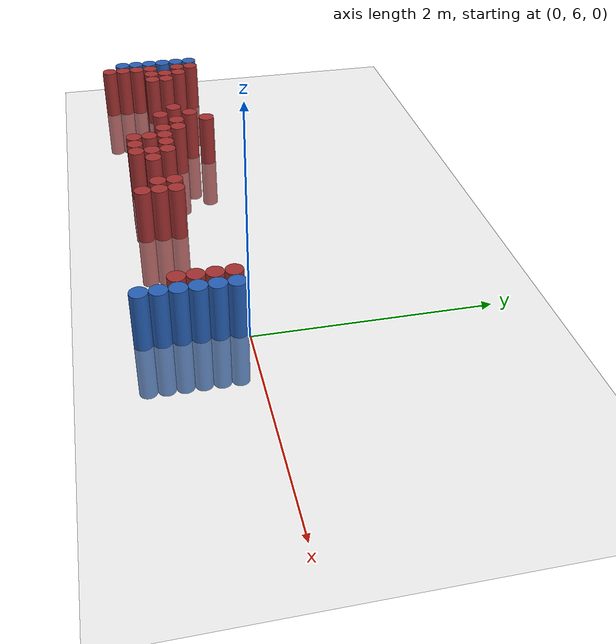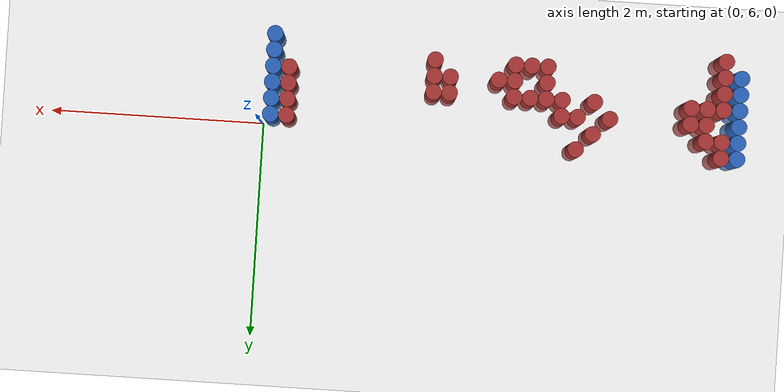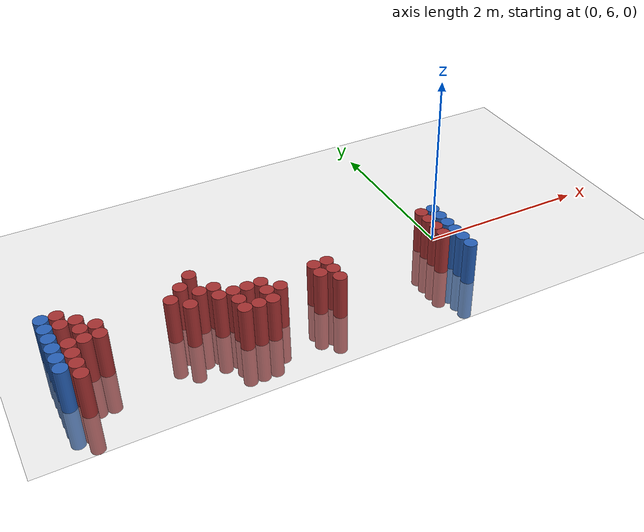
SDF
<sdf version="1.6">
 <world name="default">
  <model name="ground_plane">
   <static>1</static>
   <link name="link">
    <collision name="collision">
     <geometry><plane><normal>0 0 1</normal><size>100 100</size></plane></geometry>
     <surface><friction><ode><mu>100</mu><mu2>50</mu2></ode></friction></surface>
    </collision>
    <visual name="visual">
     <cast_shadows>0</cast_shadows>
     <geometry><plane><normal>0 0 1</normal><size>100 100</size></plane></geometry>
     <material>
      <script><uri>file://media/materials/scripts/gazebo.material</uri><name>Gazebo/Grey</name></script>
     </material>
    </visual>
   </link>
  </model>
  <model name="unit_cylinder_97">
   <static>1</static>
   <pose>-4.425000 5.325000 0.000000 0.000000 0.000000 0.000000</pose>
   <link name="link">
    <inertial>
     <mass>1</mass>
     <inertia><ixx>0.145833</ixx><ixy>0</ixy><ixz>0</ixz><iyy>0.145833</iyy><iyz>0</iyz><izz>0.125</izz></inertia>
    </inertial>
    <collision name="collision">
     <geometry><cylinder><radius>0.075000</radius><length>1</length></cylinder></geometry>
    </collision>
    <visual name="visual">
     <geometry><cylinder><radius>0.075000</radius><length>1</length></cylinder></geometry>
     <material>
      <ambient>0.152000 0.379000 0.720000 1</ambient>
      <diffuse>0.152000 0.379000 0.720000 1</diffuse>
     </material>
     <material>
      <script><name>Gazebo/Grey</name><uri>file://media/materials/scripts/gazebo.material</uri></script>
     </material>
    </visual>
   </link>
  </model>
  <model name="unit_cylinder_98">
   <static>1</static>
   <pose>-4.425000 5.475000 0.000000 0.000000 0.000000 0.000000</pose>
   <link name="link">
    <inertial>
     <mass>1</mass>
     <inertia><ixx>0.145833</ixx><ixy>0</ixy><ixz>0</ixz><iyy>0.145833</iyy><iyz>0</iyz><izz>0.125</izz></inertia>
    </inertial>
    <collision name="collision">
     <geometry><cylinder><radius>0.075000</radius><length>1</length></cylinder></geometry>
    </collision>
    <visual name="visual">
     <geometry><cylinder><radius>0.075000</radius><length>1</length></cylinder></geometry>
     <material>
      <ambient>0.152000 0.379000 0.720000 1</ambient>
      <diffuse>0.152000 0.379000 0.720000 1</diffuse>
     </material>
     <material>
      <script><name>Gazebo/Grey</name><uri>file://media/materials/scripts/gazebo.material</uri></script>
     </material>
    </visual>
   </link>
  </model>
  <model name="unit_cylinder_99">
   <static>1</static>
   <pose>-4.425000 5.625000 0.000000 0.000000 0.000000 0.000000</pose>
   <link name="link">
    <inertial>
     <mass>1</mass>
     <inertia><ixx>0.145833</ixx><ixy>0</ixy><ixz>0</ixz><iyy>0.145833</iyy><iyz>0</iyz><izz>0.125</izz></inertia>
    </inertial>
    <collision name="collision">
     <geometry><cylinder><radius>0.075000</radius><length>1</length></cylinder></geometry>
    </collision>
    <visual name="visual">
     <geometry><cylinder><radius>0.075000</radius><length>1</length></cylinder></geometry>
     <material>
      <ambient>0.152000 0.379000 0.720000 1</ambient>
      <diffuse>0.152000 0.379000 0.720000 1</diffuse>
     </material>
     <material>
      <script><name>Gazebo/Grey</name><uri>file://media/materials/scripts/gazebo.material</uri></script>
     </material>
    </visual>
   </link>
  </model>
  <model name="unit_cylinder_100">
   <static>1</static>
   <pose>-4.425000 5.775000 0.000000 0.000000 0.000000 0.000000</pose>
   <link name="link">
    <inertial>
     <mass>1</mass>
     <inertia><ixx>0.145833</ixx><ixy>0</ixy><ixz>0</ixz><iyy>0.145833</iyy><iyz>0</iyz><izz>0.125</izz></inertia>
    </inertial>
    <collision name="collision">
     <geometry><cylinder><radius>0.075000</radius><length>1</length></cylinder></geometry>
    </collision>
    <visual name="visual">
     <geometry><cylinder><radius>0.075000</radius><length>1</length></cylinder></geometry>
     <material>
      <ambient>0.152000 0.379000 0.720000 1</ambient>
      <diffuse>0.152000 0.379000 0.720000 1</diffuse>
     </material>
     <material>
      <script><name>Gazebo/Grey</name><uri>file://media/materials/scripts/gazebo.material</uri></script>
     </material>
    </visual>
   </link>
  </model>
  <model name="unit_cylinder_101">
   <static>1</static>
   <pose>-4.425000 5.925000 0.000000 0.000000 0.000000 0.000000</pose>
   <link name="link">
    <inertial>
     <mass>1</mass>
     <inertia><ixx>0.145833</ixx><ixy>0</ixy><ixz>0</ixz><iyy>0.145833</iyy><iyz>0</iyz><izz>0.125</izz></inertia>
    </inertial>
    <collision name="collision">
     <geometry><cylinder><radius>0.075000</radius><length>1</length></cylinder></geometry>
    </collision>
    <visual name="visual">
     <geometry><cylinder><radius>0.075000</radius><length>1</length></cylinder></geometry>
     <material>
      <ambient>0.152000 0.379000 0.720000 1</ambient>
      <diffuse>0.152000 0.379000 0.720000 1</diffuse>
     </material>
     <material>
      <script><name>Gazebo/Grey</name><uri>file://media/materials/scripts/gazebo.material</uri></script>
     </material>
    </visual>
   </link>
  </model>
  <model name="unit_cylinder_102">
   <static>1</static>
   <pose>-4.425000 6.075000 0.000000 0.000000 0.000000 0.000000</pose>
   <link name="link">
    <inertial>
     <mass>1</mass>
     <inertia><ixx>0.145833</ixx><ixy>0</ixy><ixz>0</ixz><iyy>0.145833</iyy><iyz>0</iyz><izz>0.125</izz></inertia>
    </inertial>
    <collision name="collision">
     <geometry><cylinder><radius>0.075000</radius><length>1</length></cylinder></geometry>
    </collision>
    <visual name="visual">
     <geometry><cylinder><radius>0.075000</radius><length>1</length></cylinder></geometry>
     <material>
      <ambient>0.152000 0.379000 0.720000 1</ambient>
      <diffuse>0.152000 0.379000 0.720000 1</diffuse>
     </material>
     <material>
      <script><name>Gazebo/Grey</name><uri>file://media/materials/scripts/gazebo.material</uri></script>
     </material>
    </visual>
   </link>
  </model>
  <model name="unit_cylinder_126">
   <static>1</static>
   <pose>-4.275000 5.175000 0.000000 0.000000 0.000000 0.000000</pose>
   <link name="link">
    <inertial>
     <mass>1</mass>
     <inertia><ixx>0.145833</ixx><ixy>0</ixy><ixz>0</ixz><iyy>0.145833</iyy><iyz>0</iyz><izz>0.125</izz></inertia>
    </inertial>
    <collision name="collision">
     <geometry><cylinder><radius>0.075000</radius><length>1</length></cylinder></geometry>
    </collision>
    <visual name="visual">
     <geometry><cylinder><radius>0.075000</radius><length>1</length></cylinder></geometry>
     <material>
      <ambient>0.648000 0.192000 0.192000 1</ambient>
      <diffuse>0.648000 0.192000 0.192000 1</diffuse>
     </material>
     <material>
      <script><name>Gazebo/Grey</name><uri>file://media/materials/scripts/gazebo.material</uri></script>
     </material>
    </visual>
   </link>
  </model>
  <model name="unit_cylinder_127">
   <static>1</static>
   <pose>-4.275000 5.325000 0.000000 0.000000 0.000000 0.000000</pose>
   <link name="link">
    <inertial>
     <mass>1</mass>
     <inertia><ixx>0.145833</ixx><ixy>0</ixy><ixz>0</ixz><iyy>0.145833</iyy><iyz>0</iyz><izz>0.125</izz></inertia>
    </inertial>
    <collision name="collision">
     <geometry><cylinder><radius>0.075000</radius><length>1</length></cylinder></geometry>
    </collision>
    <visual name="visual">
     <geometry><cylinder><radius>0.075000</radius><length>1</length></cylinder></geometry>
     <material>
      <ambient>0.648000 0.192000 0.192000 1</ambient>
      <diffuse>0.648000 0.192000 0.192000 1</diffuse>
     </material>
     <material>
      <script><name>Gazebo/Grey</name><uri>file://media/materials/scripts/gazebo.material</uri></script>
     </material>
    </visual>
   </link>
  </model>
  <model name="unit_cylinder_128">
   <static>1</static>
   <pose>-4.275000 5.475000 0.000000 0.000000 0.000000 0.000000</pose>
   <link name="link">
    <inertial>
     <mass>1</mass>
     <inertia><ixx>0.145833</ixx><ixy>0</ixy><ixz>0</ixz><iyy>0.145833</iyy><iyz>0</iyz><izz>0.125</izz></inertia>
    </inertial>
    <collision name="collision">
     <geometry><cylinder><radius>0.075000</radius><length>1</length></cylinder></geometry>
    </collision>
    <visual name="visual">
     <geometry><cylinder><radius>0.075000</radius><length>1</length></cylinder></geometry>
     <material>
      <ambient>0.648000 0.192000 0.192000 1</ambient>
      <diffuse>0.648000 0.192000 0.192000 1</diffuse>
     </material>
     <material>
      <script><name>Gazebo/Grey</name><uri>file://media/materials/scripts/gazebo.material</uri></script>
     </material>
    </visual>
   </link>
  </model>
  <model name="unit_cylinder_129">
   <static>1</static>
   <pose>-4.275000 5.625000 0.000000 0.000000 0.000000 0.000000</pose>
   <link name="link">
    <inertial>
     <mass>1</mass>
     <inertia><ixx>0.145833</ixx><ixy>0</ixy><ixz>0</ixz><iyy>0.145833</iyy><iyz>0</iyz><izz>0.125</izz></inertia>
    </inertial>
    <collision name="collision">
     <geometry><cylinder><radius>0.075000</radius><length>1</length></cylinder></geometry>
    </collision>
    <visual name="visual">
     <geometry><cylinder><radius>0.075000</radius><length>1</length></cylinder></geometry>
     <material>
      <ambient>0.648000 0.192000 0.192000 1</ambient>
      <diffuse>0.648000 0.192000 0.192000 1</diffuse>
     </material>
     <material>
      <script><name>Gazebo/Grey</name><uri>file://media/materials/scripts/gazebo.material</uri></script>
     </material>
    </visual>
   </link>
  </model>
  <model name="unit_cylinder_130">
   <static>1</static>
   <pose>-4.275000 5.925000 0.000000 0.000000 0.000000 0.000000</pose>
   <link name="link">
    <inertial>
     <mass>1</mass>
     <inertia><ixx>0.145833</ixx><ixy>0</ixy><ixz>0</ixz><iyy>0.145833</iyy><iyz>0</iyz><izz>0.125</izz></inertia>
    </inertial>
    <collision name="collision">
     <geometry><cylinder><radius>0.075000</radius><length>1</length></cylinder></geometry>
    </collision>
    <visual name="visual">
     <geometry><cylinder><radius>0.075000</radius><length>1</length></cylinder></geometry>
     <material>
      <ambient>0.648000 0.192000 0.192000 1</ambient>
      <diffuse>0.648000 0.192000 0.192000 1</diffuse>
     </material>
     <material>
      <script><name>Gazebo/Grey</name><uri>file://media/materials/scripts/gazebo.material</uri></script>
     </material>
    </visual>
   </link>
  </model>
  <model name="unit_cylinder_131">
   <static>1</static>
   <pose>-4.275000 6.075000 0.000000 0.000000 0.000000 0.000000</pose>
   <link name="link">
    <inertial>
     <mass>1</mass>
     <inertia><ixx>0.145833</ixx><ixy>0</ixy><ixz>0</ixz><iyy>0.145833</iyy><iyz>0</iyz><izz>0.125</izz></inertia>
    </inertial>
    <collision name="collision">
     <geometry><cylinder><radius>0.075000</radius><length>1</length></cylinder></geometry>
    </collision>
    <visual name="visual">
     <geometry><cylinder><radius>0.075000</radius><length>1</length></cylinder></geometry>
     <material>
      <ambient>0.648000 0.192000 0.192000 1</ambient>
      <diffuse>0.648000 0.192000 0.192000 1</diffuse>
     </material>
     <material>
      <script><name>Gazebo/Grey</name><uri>file://media/materials/scripts/gazebo.material</uri></script>
     </material>
    </visual>
   </link>
  </model>
  <model name="unit_cylinder_145">
   <static>1</static>
   <pose>-4.125000 5.625000 0.000000 0.000000 0.000000 0.000000</pose>
   <link name="link">
    <inertial>
     <mass>1</mass>
     <inertia><ixx>0.145833</ixx><ixy>0</ixy><ixz>0</ixz><iyy>0.145833</iyy><iyz>0</iyz><izz>0.125</izz></inertia>
    </inertial>
    <collision name="collision">
     <geometry><cylinder><radius>0.075000</radius><length>1</length></cylinder></geometry>
    </collision>
    <visual name="visual">
     <geometry><cylinder><radius>0.075000</radius><length>1</length></cylinder></geometry>
     <material>
      <ambient>0.648000 0.192000 0.192000 1</ambient>
      <diffuse>0.648000 0.192000 0.192000 1</diffuse>
     </material>
     <material>
      <script><name>Gazebo/Grey</name><uri>file://media/materials/scripts/gazebo.material</uri></script>
     </material>
    </visual>
   </link>
  </model>
  <model name="unit_cylinder_146">
   <static>1</static>
   <pose>-4.125000 5.775000 0.000000 0.000000 0.000000 0.000000</pose>
   <link name="link">
    <inertial>
     <mass>1</mass>
     <inertia><ixx>0.145833</ixx><ixy>0</ixy><ixz>0</ixz><iyy>0.145833</iyy><iyz>0</iyz><izz>0.125</izz></inertia>
    </inertial>
    <collision name="collision">
     <geometry><cylinder><radius>0.075000</radius><length>1</length></cylinder></geometry>
    </collision>
    <visual name="visual">
     <geometry><cylinder><radius>0.075000</radius><length>1</length></cylinder></geometry>
     <material>
      <ambient>0.648000 0.192000 0.192000 1</ambient>
      <diffuse>0.648000 0.192000 0.192000 1</diffuse>
     </material>
     <material>
      <script><name>Gazebo/Grey</name><uri>file://media/materials/scripts/gazebo.material</uri></script>
     </material>
    </visual>
   </link>
  </model>
  <model name="unit_cylinder_147">
   <static>1</static>
   <pose>-4.125000 5.925000 0.000000 0.000000 0.000000 0.000000</pose>
   <link name="link">
    <inertial>
     <mass>1</mass>
     <inertia><ixx>0.145833</ixx><ixy>0</ixy><ixz>0</ixz><iyy>0.145833</iyy><iyz>0</iyz><izz>0.125</izz></inertia>
    </inertial>
    <collision name="collision">
     <geometry><cylinder><radius>0.075000</radius><length>1</length></cylinder></geometry>
    </collision>
    <visual name="visual">
     <geometry><cylinder><radius>0.075000</radius><length>1</length></cylinder></geometry>
     <material>
      <ambient>0.648000 0.192000 0.192000 1</ambient>
      <diffuse>0.648000 0.192000 0.192000 1</diffuse>
     </material>
     <material>
      <script><name>Gazebo/Grey</name><uri>file://media/materials/scripts/gazebo.material</uri></script>
     </material>
    </visual>
   </link>
  </model>
  <model name="unit_cylinder_151">
   <static>1</static>
   <pose>-3.975000 5.625000 0.000000 0.000000 0.000000 0.000000</pose>
   <link name="link">
    <inertial>
     <mass>1</mass>
     <inertia><ixx>0.145833</ixx><ixy>0</ixy><ixz>0</ixz><iyy>0.145833</iyy><iyz>0</iyz><izz>0.125</izz></inertia>
    </inertial>
    <collision name="collision">
     <geometry><cylinder><radius>0.075000</radius><length>1</length></cylinder></geometry>
    </collision>
    <visual name="visual">
     <geometry><cylinder><radius>0.075000</radius><length>1</length></cylinder></geometry>
     <material>
      <ambient>0.648000 0.192000 0.192000 1</ambient>
      <diffuse>0.648000 0.192000 0.192000 1</diffuse>
     </material>
     <material>
      <script><name>Gazebo/Grey</name><uri>file://media/materials/scripts/gazebo.material</uri></script>
     </material>
    </visual>
   </link>
  </model>
  <model name="unit_cylinder_152">
   <static>1</static>
   <pose>-3.975000 5.775000 0.000000 0.000000 0.000000 0.000000</pose>
   <link name="link">
    <inertial>
     <mass>1</mass>
     <inertia><ixx>0.145833</ixx><ixy>0</ixy><ixz>0</ixz><iyy>0.145833</iyy><iyz>0</iyz><izz>0.125</izz></inertia>
    </inertial>
    <collision name="collision">
     <geometry><cylinder><radius>0.075000</radius><length>1</length></cylinder></geometry>
    </collision>
    <visual name="visual">
     <geometry><cylinder><radius>0.075000</radius><length>1</length></cylinder></geometry>
     <material>
      <ambient>0.648000 0.192000 0.192000 1</ambient>
      <diffuse>0.648000 0.192000 0.192000 1</diffuse>
     </material>
     <material>
      <script><name>Gazebo/Grey</name><uri>file://media/materials/scripts/gazebo.material</uri></script>
     </material>
    </visual>
   </link>
  </model>
  <model name="unit_cylinder_167">
   <static>1</static>
   <pose>-3.225000 5.775000 0.000000 0.000000 0.000000 0.000000</pose>
   <link name="link">
    <inertial>
     <mass>1</mass>
     <inertia><ixx>0.145833</ixx><ixy>0</ixy><ixz>0</ixz><iyy>0.145833</iyy><iyz>0</iyz><izz>0.125</izz></inertia>
    </inertial>
    <collision name="collision">
     <geometry><cylinder><radius>0.075000</radius><length>1</length></cylinder></geometry>
    </collision>
    <visual name="visual">
     <geometry><cylinder><radius>0.075000</radius><length>1</length></cylinder></geometry>
     <material>
      <ambient>0.648000 0.192000 0.192000 1</ambient>
      <diffuse>0.648000 0.192000 0.192000 1</diffuse>
     </material>
     <material>
      <script><name>Gazebo/Grey</name><uri>file://media/materials/scripts/gazebo.material</uri></script>
     </material>
    </visual>
   </link>
  </model>
  <model name="unit_cylinder_168">
   <static>1</static>
   <pose>-3.075000 5.625000 0.000000 0.000000 0.000000 0.000000</pose>
   <link name="link">
    <inertial>
     <mass>1</mass>
     <inertia><ixx>0.145833</ixx><ixy>0</ixy><ixz>0</ixz><iyy>0.145833</iyy><iyz>0</iyz><izz>0.125</izz></inertia>
    </inertial>
    <collision name="collision">
     <geometry><cylinder><radius>0.075000</radius><length>1</length></cylinder></geometry>
    </collision>
    <visual name="visual">
     <geometry><cylinder><radius>0.075000</radius><length>1</length></cylinder></geometry>
     <material>
      <ambient>0.648000 0.192000 0.192000 1</ambient>
      <diffuse>0.648000 0.192000 0.192000 1</diffuse>
     </material>
     <material>
      <script><name>Gazebo/Grey</name><uri>file://media/materials/scripts/gazebo.material</uri></script>
     </material>
    </visual>
   </link>
  </model>
  <model name="unit_cylinder_169">
   <static>1</static>
   <pose>-3.075000 5.925000 0.000000 0.000000 0.000000 0.000000</pose>
   <link name="link">
    <inertial>
     <mass>1</mass>
     <inertia><ixx>0.145833</ixx><ixy>0</ixy><ixz>0</ixz><iyy>0.145833</iyy><iyz>0</iyz><izz>0.125</izz></inertia>
    </inertial>
    <collision name="collision">
     <geometry><cylinder><radius>0.075000</radius><length>1</length></cylinder></geometry>
    </collision>
    <visual name="visual">
     <geometry><cylinder><radius>0.075000</radius><length>1</length></cylinder></geometry>
     <material>
      <ambient>0.648000 0.192000 0.192000 1</ambient>
      <diffuse>0.648000 0.192000 0.192000 1</diffuse>
     </material>
     <material>
      <script><name>Gazebo/Grey</name><uri>file://media/materials/scripts/gazebo.material</uri></script>
     </material>
    </visual>
   </link>
  </model>
  <model name="unit_cylinder_172">
   <static>1</static>
   <pose>-2.925000 5.775000 0.000000 0.000000 0.000000 0.000000</pose>
   <link name="link">
    <inertial>
     <mass>1</mass>
     <inertia><ixx>0.145833</ixx><ixy>0</ixy><ixz>0</ixz><iyy>0.145833</iyy><iyz>0</iyz><izz>0.125</izz></inertia>
    </inertial>
    <collision name="collision">
     <geometry><cylinder><radius>0.075000</radius><length>1</length></cylinder></geometry>
    </collision>
    <visual name="visual">
     <geometry><cylinder><radius>0.075000</radius><length>1</length></cylinder></geometry>
     <material>
      <ambient>0.648000 0.192000 0.192000 1</ambient>
      <diffuse>0.648000 0.192000 0.192000 1</diffuse>
     </material>
     <material>
      <script><name>Gazebo/Grey</name><uri>file://media/materials/scripts/gazebo.material</uri></script>
     </material>
    </visual>
   </link>
  </model>
  <model name="unit_cylinder_173">
   <static>1</static>
   <pose>-2.925000 6.075000 0.000000 0.000000 0.000000 0.000000</pose>
   <link name="link">
    <inertial>
     <mass>1</mass>
     <inertia><ixx>0.145833</ixx><ixy>0</ixy><ixz>0</ixz><iyy>0.145833</iyy><iyz>0</iyz><izz>0.125</izz></inertia>
    </inertial>
    <collision name="collision">
     <geometry><cylinder><radius>0.075000</radius><length>1</length></cylinder></geometry>
    </collision>
    <visual name="visual">
     <geometry><cylinder><radius>0.075000</radius><length>1</length></cylinder></geometry>
     <material>
      <ambient>0.648000 0.192000 0.192000 1</ambient>
      <diffuse>0.648000 0.192000 0.192000 1</diffuse>
     </material>
     <material>
      <script><name>Gazebo/Grey</name><uri>file://media/materials/scripts/gazebo.material</uri></script>
     </material>
    </visual>
   </link>
  </model>
  <model name="unit_cylinder_180">
   <static>1</static>
   <pose>-2.775000 5.625000 0.000000 0.000000 0.000000 0.000000</pose>
   <link name="link">
    <inertial>
     <mass>1</mass>
     <inertia><ixx>0.145833</ixx><ixy>0</ixy><ixz>0</ixz><iyy>0.145833</iyy><iyz>0</iyz><izz>0.125</izz></inertia>
    </inertial>
    <collision name="collision">
     <geometry><cylinder><radius>0.075000</radius><length>1</length></cylinder></geometry>
    </collision>
    <visual name="visual">
     <geometry><cylinder><radius>0.075000</radius><length>1</length></cylinder></geometry>
     <material>
      <ambient>0.648000 0.192000 0.192000 1</ambient>
      <diffuse>0.648000 0.192000 0.192000 1</diffuse>
     </material>
     <material>
      <script><name>Gazebo/Grey</name><uri>file://media/materials/scripts/gazebo.material</uri></script>
     </material>
    </visual>
   </link>
  </model>
  <model name="unit_cylinder_181">
   <static>1</static>
   <pose>-2.775000 5.775000 0.000000 0.000000 0.000000 0.000000</pose>
   <link name="link">
    <inertial>
     <mass>1</mass>
     <inertia><ixx>0.145833</ixx><ixy>0</ixy><ixz>0</ixz><iyy>0.145833</iyy><iyz>0</iyz><izz>0.125</izz></inertia>
    </inertial>
    <collision name="collision">
     <geometry><cylinder><radius>0.075000</radius><length>1</length></cylinder></geometry>
    </collision>
    <visual name="visual">
     <geometry><cylinder><radius>0.075000</radius><length>1</length></cylinder></geometry>
     <material>
      <ambient>0.648000 0.192000 0.192000 1</ambient>
      <diffuse>0.648000 0.192000 0.192000 1</diffuse>
     </material>
     <material>
      <script><name>Gazebo/Grey</name><uri>file://media/materials/scripts/gazebo.material</uri></script>
     </material>
    </visual>
   </link>
  </model>
  <model name="unit_cylinder_190">
   <static>1</static>
   <pose>-2.625000 5.325000 0.000000 0.000000 0.000000 0.000000</pose>
   <link name="link">
    <inertial>
     <mass>1</mass>
     <inertia><ixx>0.145833</ixx><ixy>0</ixy><ixz>0</ixz><iyy>0.145833</iyy><iyz>0</iyz><izz>0.125</izz></inertia>
    </inertial>
    <collision name="collision">
     <geometry><cylinder><radius>0.075000</radius><length>1</length></cylinder></geometry>
    </collision>
    <visual name="visual">
     <geometry><cylinder><radius>0.075000</radius><length>1</length></cylinder></geometry>
     <material>
      <ambient>0.648000 0.192000 0.192000 1</ambient>
      <diffuse>0.648000 0.192000 0.192000 1</diffuse>
     </material>
     <material>
      <script><name>Gazebo/Grey</name><uri>file://media/materials/scripts/gazebo.material</uri></script>
     </material>
    </visual>
   </link>
  </model>
  <model name="unit_cylinder_191">
   <static>1</static>
   <pose>-2.625000 5.475000 0.000000 0.000000 0.000000 0.000000</pose>
   <link name="link">
    <inertial>
     <mass>1</mass>
     <inertia><ixx>0.145833</ixx><ixy>0</ixy><ixz>0</ixz><iyy>0.145833</iyy><iyz>0</iyz><izz>0.125</izz></inertia>
    </inertial>
    <collision name="collision">
     <geometry><cylinder><radius>0.075000</radius><length>1</length></cylinder></geometry>
    </collision>
    <visual name="visual">
     <geometry><cylinder><radius>0.075000</radius><length>1</length></cylinder></geometry>
     <material>
      <ambient>0.648000 0.192000 0.192000 1</ambient>
      <diffuse>0.648000 0.192000 0.192000 1</diffuse>
     </material>
     <material>
      <script><name>Gazebo/Grey</name><uri>file://media/materials/scripts/gazebo.material</uri></script>
     </material>
    </visual>
   </link>
  </model>
  <model name="unit_cylinder_192">
   <static>1</static>
   <pose>-2.625000 5.625000 0.000000 0.000000 0.000000 0.000000</pose>
   <link name="link">
    <inertial>
     <mass>1</mass>
     <inertia><ixx>0.145833</ixx><ixy>0</ixy><ixz>0</ixz><iyy>0.145833</iyy><iyz>0</iyz><izz>0.125</izz></inertia>
    </inertial>
    <collision name="collision">
     <geometry><cylinder><radius>0.075000</radius><length>1</length></cylinder></geometry>
    </collision>
    <visual name="visual">
     <geometry><cylinder><radius>0.075000</radius><length>1</length></cylinder></geometry>
     <material>
      <ambient>0.648000 0.192000 0.192000 1</ambient>
      <diffuse>0.648000 0.192000 0.192000 1</diffuse>
     </material>
     <material>
      <script><name>Gazebo/Grey</name><uri>file://media/materials/scripts/gazebo.material</uri></script>
     </material>
    </visual>
   </link>
  </model>
  <model name="unit_cylinder_199">
   <static>1</static>
   <pose>-2.475000 5.325000 0.000000 0.000000 0.000000 0.000000</pose>
   <link name="link">
    <inertial>
     <mass>1</mass>
     <inertia><ixx>0.145833</ixx><ixy>0</ixy><ixz>0</ixz><iyy>0.145833</iyy><iyz>0</iyz><izz>0.125</izz></inertia>
    </inertial>
    <collision name="collision">
     <geometry><cylinder><radius>0.075000</radius><length>1</length></cylinder></geometry>
    </collision>
    <visual name="visual">
     <geometry><cylinder><radius>0.075000</radius><length>1</length></cylinder></geometry>
     <material>
      <ambient>0.648000 0.192000 0.192000 1</ambient>
      <diffuse>0.648000 0.192000 0.192000 1</diffuse>
     </material>
     <material>
      <script><name>Gazebo/Grey</name><uri>file://media/materials/scripts/gazebo.material</uri></script>
     </material>
    </visual>
   </link>
  </model>
  <model name="unit_cylinder_200">
   <static>1</static>
   <pose>-2.475000 5.625000 0.000000 0.000000 0.000000 0.000000</pose>
   <link name="link">
    <inertial>
     <mass>1</mass>
     <inertia><ixx>0.145833</ixx><ixy>0</ixy><ixz>0</ixz><iyy>0.145833</iyy><iyz>0</iyz><izz>0.125</izz></inertia>
    </inertial>
    <collision name="collision">
     <geometry><cylinder><radius>0.075000</radius><length>1</length></cylinder></geometry>
    </collision>
    <visual name="visual">
     <geometry><cylinder><radius>0.075000</radius><length>1</length></cylinder></geometry>
     <material>
      <ambient>0.648000 0.192000 0.192000 1</ambient>
      <diffuse>0.648000 0.192000 0.192000 1</diffuse>
     </material>
     <material>
      <script><name>Gazebo/Grey</name><uri>file://media/materials/scripts/gazebo.material</uri></script>
     </material>
    </visual>
   </link>
  </model>
  <model name="unit_cylinder_204">
   <static>1</static>
   <pose>-2.325000 5.325000 0.000000 0.000000 0.000000 0.000000</pose>
   <link name="link">
    <inertial>
     <mass>1</mass>
     <inertia><ixx>0.145833</ixx><ixy>0</ixy><ixz>0</ixz><iyy>0.145833</iyy><iyz>0</iyz><izz>0.125</izz></inertia>
    </inertial>
    <collision name="collision">
     <geometry><cylinder><radius>0.075000</radius><length>1</length></cylinder></geometry>
    </collision>
    <visual name="visual">
     <geometry><cylinder><radius>0.075000</radius><length>1</length></cylinder></geometry>
     <material>
      <ambient>0.648000 0.192000 0.192000 1</ambient>
      <diffuse>0.648000 0.192000 0.192000 1</diffuse>
     </material>
     <material>
      <script><name>Gazebo/Grey</name><uri>file://media/materials/scripts/gazebo.material</uri></script>
     </material>
    </visual>
   </link>
  </model>
  <model name="unit_cylinder_205">
   <static>1</static>
   <pose>-2.325000 5.475000 0.000000 0.000000 0.000000 0.000000</pose>
   <link name="link">
    <inertial>
     <mass>1</mass>
     <inertia><ixx>0.145833</ixx><ixy>0</ixy><ixz>0</ixz><iyy>0.145833</iyy><iyz>0</iyz><izz>0.125</izz></inertia>
    </inertial>
    <collision name="collision">
     <geometry><cylinder><radius>0.075000</radius><length>1</length></cylinder></geometry>
    </collision>
    <visual name="visual">
     <geometry><cylinder><radius>0.075000</radius><length>1</length></cylinder></geometry>
     <material>
      <ambient>0.648000 0.192000 0.192000 1</ambient>
      <diffuse>0.648000 0.192000 0.192000 1</diffuse>
     </material>
     <material>
      <script><name>Gazebo/Grey</name><uri>file://media/materials/scripts/gazebo.material</uri></script>
     </material>
    </visual>
   </link>
  </model>
  <model name="unit_cylinder_206">
   <static>1</static>
   <pose>-2.325000 5.625000 0.000000 0.000000 0.000000 0.000000</pose>
   <link name="link">
    <inertial>
     <mass>1</mass>
     <inertia><ixx>0.145833</ixx><ixy>0</ixy><ixz>0</ixz><iyy>0.145833</iyy><iyz>0</iyz><izz>0.125</izz></inertia>
    </inertial>
    <collision name="collision">
     <geometry><cylinder><radius>0.075000</radius><length>1</length></cylinder></geometry>
    </collision>
    <visual name="visual">
     <geometry><cylinder><radius>0.075000</radius><length>1</length></cylinder></geometry>
     <material>
      <ambient>0.648000 0.192000 0.192000 1</ambient>
      <diffuse>0.648000 0.192000 0.192000 1</diffuse>
     </material>
     <material>
      <script><name>Gazebo/Grey</name><uri>file://media/materials/scripts/gazebo.material</uri></script>
     </material>
    </visual>
   </link>
  </model>
  <model name="unit_cylinder_211">
   <static>1</static>
   <pose>-2.175000 5.475000 0.000000 0.000000 0.000000 0.000000</pose>
   <link name="link">
    <inertial>
     <mass>1</mass>
     <inertia><ixx>0.145833</ixx><ixy>0</ixy><ixz>0</ixz><iyy>0.145833</iyy><iyz>0</iyz><izz>0.125</izz></inertia>
    </inertial>
    <collision name="collision">
     <geometry><cylinder><radius>0.075000</radius><length>1</length></cylinder></geometry>
    </collision>
    <visual name="visual">
     <geometry><cylinder><radius>0.075000</radius><length>1</length></cylinder></geometry>
     <material>
      <ambient>0.648000 0.192000 0.192000 1</ambient>
      <diffuse>0.648000 0.192000 0.192000 1</diffuse>
     </material>
     <material>
      <script><name>Gazebo/Grey</name><uri>file://media/materials/scripts/gazebo.material</uri></script>
     </material>
    </visual>
   </link>
  </model>
  <model name="unit_cylinder_213">
   <static>1</static>
   <pose>-1.725000 5.475000 0.000000 0.000000 0.000000 0.000000</pose>
   <link name="link">
    <inertial>
     <mass>1</mass>
     <inertia><ixx>0.145833</ixx><ixy>0</ixy><ixz>0</ixz><iyy>0.145833</iyy><iyz>0</iyz><izz>0.125</izz></inertia>
    </inertial>
    <collision name="collision">
     <geometry><cylinder><radius>0.075000</radius><length>1</length></cylinder></geometry>
    </collision>
    <visual name="visual">
     <geometry><cylinder><radius>0.075000</radius><length>1</length></cylinder></geometry>
     <material>
      <ambient>0.648000 0.192000 0.192000 1</ambient>
      <diffuse>0.648000 0.192000 0.192000 1</diffuse>
     </material>
     <material>
      <script><name>Gazebo/Grey</name><uri>file://media/materials/scripts/gazebo.material</uri></script>
     </material>
    </visual>
   </link>
  </model>
  <model name="unit_cylinder_214">
   <static>1</static>
   <pose>-1.725000 5.625000 0.000000 0.000000 0.000000 0.000000</pose>
   <link name="link">
    <inertial>
     <mass>1</mass>
     <inertia><ixx>0.145833</ixx><ixy>0</ixy><ixz>0</ixz><iyy>0.145833</iyy><iyz>0</iyz><izz>0.125</izz></inertia>
    </inertial>
    <collision name="collision">
     <geometry><cylinder><radius>0.075000</radius><length>1</length></cylinder></geometry>
    </collision>
    <visual name="visual">
     <geometry><cylinder><radius>0.075000</radius><length>1</length></cylinder></geometry>
     <material>
      <ambient>0.648000 0.192000 0.192000 1</ambient>
      <diffuse>0.648000 0.192000 0.192000 1</diffuse>
     </material>
     <material>
      <script><name>Gazebo/Grey</name><uri>file://media/materials/scripts/gazebo.material</uri></script>
     </material>
    </visual>
   </link>
  </model>
  <model name="unit_cylinder_215">
   <static>1</static>
   <pose>-1.575000 5.325000 0.000000 0.000000 0.000000 0.000000</pose>
   <link name="link">
    <inertial>
     <mass>1</mass>
     <inertia><ixx>0.145833</ixx><ixy>0</ixy><ixz>0</ixz><iyy>0.145833</iyy><iyz>0</iyz><izz>0.125</izz></inertia>
    </inertial>
    <collision name="collision">
     <geometry><cylinder><radius>0.075000</radius><length>1</length></cylinder></geometry>
    </collision>
    <visual name="visual">
     <geometry><cylinder><radius>0.075000</radius><length>1</length></cylinder></geometry>
     <material>
      <ambient>0.648000 0.192000 0.192000 1</ambient>
      <diffuse>0.648000 0.192000 0.192000 1</diffuse>
     </material>
     <material>
      <script><name>Gazebo/Grey</name><uri>file://media/materials/scripts/gazebo.material</uri></script>
     </material>
    </visual>
   </link>
  </model>
  <model name="unit_cylinder_216">
   <static>1</static>
   <pose>-1.575000 5.475000 0.000000 0.000000 0.000000 0.000000</pose>
   <link name="link">
    <inertial>
     <mass>1</mass>
     <inertia><ixx>0.145833</ixx><ixy>0</ixy><ixz>0</ixz><iyy>0.145833</iyy><iyz>0</iyz><izz>0.125</izz></inertia>
    </inertial>
    <collision name="collision">
     <geometry><cylinder><radius>0.075000</radius><length>1</length></cylinder></geometry>
    </collision>
    <visual name="visual">
     <geometry><cylinder><radius>0.075000</radius><length>1</length></cylinder></geometry>
     <material>
      <ambient>0.648000 0.192000 0.192000 1</ambient>
      <diffuse>0.648000 0.192000 0.192000 1</diffuse>
     </material>
     <material>
      <script><name>Gazebo/Grey</name><uri>file://media/materials/scripts/gazebo.material</uri></script>
     </material>
    </visual>
   </link>
  </model>
  <model name="unit_cylinder_217">
   <static>1</static>
   <pose>-1.575000 5.625000 0.000000 0.000000 0.000000 0.000000</pose>
   <link name="link">
    <inertial>
     <mass>1</mass>
     <inertia><ixx>0.145833</ixx><ixy>0</ixy><ixz>0</ixz><iyy>0.145833</iyy><iyz>0</iyz><izz>0.125</izz></inertia>
    </inertial>
    <collision name="collision">
     <geometry><cylinder><radius>0.075000</radius><length>1</length></cylinder></geometry>
    </collision>
    <visual name="visual">
     <geometry><cylinder><radius>0.075000</radius><length>1</length></cylinder></geometry>
     <material>
      <ambient>0.648000 0.192000 0.192000 1</ambient>
      <diffuse>0.648000 0.192000 0.192000 1</diffuse>
     </material>
     <material>
      <script><name>Gazebo/Grey</name><uri>file://media/materials/scripts/gazebo.material</uri></script>
     </material>
    </visual>
   </link>
  </model>
  <model name="unit_cylinder_250">
   <static>1</static>
   <pose>-0.225000 5.475000 0.000000 0.000000 0.000000 0.000000</pose>
   <link name="link">
    <inertial>
     <mass>1</mass>
     <inertia><ixx>0.145833</ixx><ixy>0</ixy><ixz>0</ixz><iyy>0.145833</iyy><iyz>0</iyz><izz>0.125</izz></inertia>
    </inertial>
    <collision name="collision">
     <geometry><cylinder><radius>0.075000</radius><length>1</length></cylinder></geometry>
    </collision>
    <visual name="visual">
     <geometry><cylinder><radius>0.075000</radius><length>1</length></cylinder></geometry>
     <material>
      <ambient>0.648000 0.192000 0.192000 1</ambient>
      <diffuse>0.648000 0.192000 0.192000 1</diffuse>
     </material>
     <material>
      <script><name>Gazebo/Grey</name><uri>file://media/materials/scripts/gazebo.material</uri></script>
     </material>
    </visual>
   </link>
  </model>
  <model name="unit_cylinder_251">
   <static>1</static>
   <pose>-0.225000 5.625000 0.000000 0.000000 0.000000 0.000000</pose>
   <link name="link">
    <inertial>
     <mass>1</mass>
     <inertia><ixx>0.145833</ixx><ixy>0</ixy><ixz>0</ixz><iyy>0.145833</iyy><iyz>0</iyz><izz>0.125</izz></inertia>
    </inertial>
    <collision name="collision">
     <geometry><cylinder><radius>0.075000</radius><length>1</length></cylinder></geometry>
    </collision>
    <visual name="visual">
     <geometry><cylinder><radius>0.075000</radius><length>1</length></cylinder></geometry>
     <material>
      <ambient>0.648000 0.192000 0.192000 1</ambient>
      <diffuse>0.648000 0.192000 0.192000 1</diffuse>
     </material>
     <material>
      <script><name>Gazebo/Grey</name><uri>file://media/materials/scripts/gazebo.material</uri></script>
     </material>
    </visual>
   </link>
  </model>
  <model name="unit_cylinder_252">
   <static>1</static>
   <pose>-0.225000 5.775000 0.000000 0.000000 0.000000 0.000000</pose>
   <link name="link">
    <inertial>
     <mass>1</mass>
     <inertia><ixx>0.145833</ixx><ixy>0</ixy><ixz>0</ixz><iyy>0.145833</iyy><iyz>0</iyz><izz>0.125</izz></inertia>
    </inertial>
    <collision name="collision">
     <geometry><cylinder><radius>0.075000</radius><length>1</length></cylinder></geometry>
    </collision>
    <visual name="visual">
     <geometry><cylinder><radius>0.075000</radius><length>1</length></cylinder></geometry>
     <material>
      <ambient>0.648000 0.192000 0.192000 1</ambient>
      <diffuse>0.648000 0.192000 0.192000 1</diffuse>
     </material>
     <material>
      <script><name>Gazebo/Grey</name><uri>file://media/materials/scripts/gazebo.material</uri></script>
     </material>
    </visual>
   </link>
  </model>
  <model name="unit_cylinder_253">
   <static>1</static>
   <pose>-0.225000 5.925000 0.000000 0.000000 0.000000 0.000000</pose>
   <link name="link">
    <inertial>
     <mass>1</mass>
     <inertia><ixx>0.145833</ixx><ixy>0</ixy><ixz>0</ixz><iyy>0.145833</iyy><iyz>0</iyz><izz>0.125</izz></inertia>
    </inertial>
    <collision name="collision">
     <geometry><cylinder><radius>0.075000</radius><length>1</length></cylinder></geometry>
    </collision>
    <visual name="visual">
     <geometry><cylinder><radius>0.075000</radius><length>1</length></cylinder></geometry>
     <material>
      <ambient>0.648000 0.192000 0.192000 1</ambient>
      <diffuse>0.648000 0.192000 0.192000 1</diffuse>
     </material>
     <material>
      <script><name>Gazebo/Grey</name><uri>file://media/materials/scripts/gazebo.material</uri></script>
     </material>
    </visual>
   </link>
  </model>
  <model name="unit_cylinder_261">
   <static>1</static>
   <pose>-0.075000 5.175000 0.000000 0.000000 0.000000 0.000000</pose>
   <link name="link">
    <inertial>
     <mass>1</mass>
     <inertia><ixx>0.145833</ixx><ixy>0</ixy><ixz>0</ixz><iyy>0.145833</iyy><iyz>0</iyz><izz>0.125</izz></inertia>
    </inertial>
    <collision name="collision">
     <geometry><cylinder><radius>0.075000</radius><length>1</length></cylinder></geometry>
    </collision>
    <visual name="visual">
     <geometry><cylinder><radius>0.075000</radius><length>1</length></cylinder></geometry>
     <material>
      <ambient>0.152000 0.379000 0.720000 1</ambient>
      <diffuse>0.152000 0.379000 0.720000 1</diffuse>
     </material>
     <material>
      <script><name>Gazebo/Grey</name><uri>file://media/materials/scripts/gazebo.material</uri></script>
     </material>
    </visual>
   </link>
  </model>
  <model name="unit_cylinder_262">
   <static>1</static>
   <pose>-0.075000 5.325000 0.000000 0.000000 0.000000 0.000000</pose>
   <link name="link">
    <inertial>
     <mass>1</mass>
     <inertia><ixx>0.145833</ixx><ixy>0</ixy><ixz>0</ixz><iyy>0.145833</iyy><iyz>0</iyz><izz>0.125</izz></inertia>
    </inertial>
    <collision name="collision">
     <geometry><cylinder><radius>0.075000</radius><length>1</length></cylinder></geometry>
    </collision>
    <visual name="visual">
     <geometry><cylinder><radius>0.075000</radius><length>1</length></cylinder></geometry>
     <material>
      <ambient>0.152000 0.379000 0.720000 1</ambient>
      <diffuse>0.152000 0.379000 0.720000 1</diffuse>
     </material>
     <material>
      <script><name>Gazebo/Grey</name><uri>file://media/materials/scripts/gazebo.material</uri></script>
     </material>
    </visual>
   </link>
  </model>
  <model name="unit_cylinder_263">
   <static>1</static>
   <pose>-0.075000 5.475000 0.000000 0.000000 0.000000 0.000000</pose>
   <link name="link">
    <inertial>
     <mass>1</mass>
     <inertia><ixx>0.145833</ixx><ixy>0</ixy><ixz>0</ixz><iyy>0.145833</iyy><iyz>0</iyz><izz>0.125</izz></inertia>
    </inertial>
    <collision name="collision">
     <geometry><cylinder><radius>0.075000</radius><length>1</length></cylinder></geometry>
    </collision>
    <visual name="visual">
     <geometry><cylinder><radius>0.075000</radius><length>1</length></cylinder></geometry>
     <material>
      <ambient>0.152000 0.379000 0.720000 1</ambient>
      <diffuse>0.152000 0.379000 0.720000 1</diffuse>
     </material>
     <material>
      <script><name>Gazebo/Grey</name><uri>file://media/materials/scripts/gazebo.material</uri></script>
     </material>
    </visual>
   </link>
  </model>
  <model name="unit_cylinder_264">
   <static>1</static>
   <pose>-0.075000 5.625000 0.000000 0.000000 0.000000 0.000000</pose>
   <link name="link">
    <inertial>
     <mass>1</mass>
     <inertia><ixx>0.145833</ixx><ixy>0</ixy><ixz>0</ixz><iyy>0.145833</iyy><iyz>0</iyz><izz>0.125</izz></inertia>
    </inertial>
    <collision name="collision">
     <geometry><cylinder><radius>0.075000</radius><length>1</length></cylinder></geometry>
    </collision>
    <visual name="visual">
     <geometry><cylinder><radius>0.075000</radius><length>1</length></cylinder></geometry>
     <material>
      <ambient>0.152000 0.379000 0.720000 1</ambient>
      <diffuse>0.152000 0.379000 0.720000 1</diffuse>
     </material>
     <material>
      <script><name>Gazebo/Grey</name><uri>file://media/materials/scripts/gazebo.material</uri></script>
     </material>
    </visual>
   </link>
  </model>
  <model name="unit_cylinder_265">
   <static>1</static>
   <pose>-0.075000 5.775000 0.000000 0.000000 0.000000 0.000000</pose>
   <link name="link">
    <inertial>
     <mass>1</mass>
     <inertia><ixx>0.145833</ixx><ixy>0</ixy><ixz>0</ixz><iyy>0.145833</iyy><iyz>0</iyz><izz>0.125</izz></inertia>
    </inertial>
    <collision name="collision">
     <geometry><cylinder><radius>0.075000</radius><length>1</length></cylinder></geometry>
    </collision>
    <visual name="visual">
     <geometry><cylinder><radius>0.075000</radius><length>1</length></cylinder></geometry>
     <material>
      <ambient>0.152000 0.379000 0.720000 1</ambient>
      <diffuse>0.152000 0.379000 0.720000 1</diffuse>
     </material>
     <material>
      <script><name>Gazebo/Grey</name><uri>file://media/materials/scripts/gazebo.material</uri></script>
     </material>
    </visual>
   </link>
  </model>
  <model name="unit_cylinder_266">
   <static>1</static>
   <pose>-0.075000 5.925000 0.000000 0.000000 0.000000 0.000000</pose>
   <link name="link">
    <inertial>
     <mass>1</mass>
     <inertia><ixx>0.145833</ixx><ixy>0</ixy><ixz>0</ixz><iyy>0.145833</iyy><iyz>0</iyz><izz>0.125</izz></inertia>
    </inertial>
    <collision name="collision">
     <geometry><cylinder><radius>0.075000</radius><length>1</length></cylinder></geometry>
    </collision>
    <visual name="visual">
     <geometry><cylinder><radius>0.075000</radius><length>1</length></cylinder></geometry>
     <material>
      <ambient>0.152000 0.379000 0.720000 1</ambient>
      <diffuse>0.152000 0.379000 0.720000 1</diffuse>
     </material>
     <material>
      <script><name>Gazebo/Grey</name><uri>file://media/materials/scripts/gazebo.material</uri></script>
     </material>
    </visual>
   </link>
  </model>
 </world>
</sdf>
